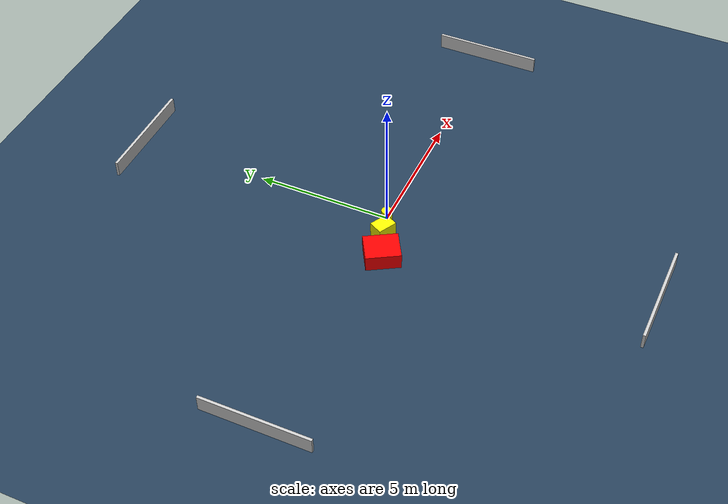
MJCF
<?xml version="1.0" ?>
<mujoco model="generated_environment">
  <option timestep="0.01" integrator="RK4" cone="elliptic"/>
  <default>
    <geom density="1"/>
  </default>
  <asset>
    <texture builtin="gradient" height="3072" name="skybox" rgb1="0.3 0.5 0.7" rgb2="0 0 0" type="skybox" width="512"/>
    <texture builtin="checker" height="300" name="groundplane" rgb1="0.2 0.3 0.4" rgb2="0.1 0.2 0.3" type="2d" width="300"/>
    <material name="groundplane" reflectance="0.2" texrepeat="5 5" texture="groundplane"/>
  </asset>
  <worldbody>
    <light dir="0 0 -1" directional="true" pos="0 0 1.5"/>
    <geom condim="3" friction="0.5 0.005 0.001" material="groundplane" name="floor" pos="0 0 0" size="0 0 0.05" type="plane"/>
    <body name="walls">
      <geom name="wall_1" condim="4" pos="-10.0 0.0 0.3" rgba="0.800000011920929 0.800000011920929 0.800000011920929 1.0" size="0.05 2.0 0.3" type="box"/>
      <geom name="wall_2" condim="4" pos="10.0 0.0 0.3" rgba="0.800000011920929 0.800000011920929 0.800000011920929 1.0" size="0.05 2.0 0.3" type="box"/>
      <geom name="wall_3" condim="4" pos="0.0 -10.0 0.3" rgba="0.800000011920929 0.800000011920929 0.800000011920929 1.0" size="2.0 0.05 0.3" type="box"/>
      <geom name="wall_4" condim="4" pos="0.0 10.0 0.3" rgba="0.800000011920929 0.800000011920929 0.800000011920929 1.0" size="2.0 0.05 0.3" type="box"/>
    </body>
    <body name="robot">
      <joint name="joint_x" type="slide" pos="0 0 0" axis="1 0 0"/>
      <joint name="joint_y" type="slide" pos="0 0 0" axis="0 1 0"/>
      <geom name="robot" type="cylinder" pos="0.0 0.0 0.2" size="0.2 0.2 0.0" mass="5.0" friction="1.0 0.005 0.0001" condim="4" rgba="1.0 1.0 0.0 1.0"/>
    </body>
    <body name="obstacle_1_movable">
      <geom name="obstacle_1_movable" condim="4" pos="-0.8125336974920362 -0.21363499511698159 0.3" euler="0 0 331.95204004531354" friction="0.0 0.005 0.001" rgba="1.0 1.0 0.0 1.0" size="0.359322877636817 0.2699944385124711 0.3" type="box" mass="0.1"/>
      <joint type="free"/>
    </body>
    <body name="obstacle_2_static">
      <geom name="obstacle_2_static" condim="4" pos="-1.8239984813175152 -0.6187590423185415 0.3" euler="0 0 300.44159579443266" friction="0.0 0.005 0.001" rgba="1.0 0.0 0.0 1.0" size="0.6287334759065578 0.5349096232113717 0.3" type="box"/>
    </body>
  </worldbody>
  <actuator>
    <motor name="actuator_x" joint="joint_x" gear="1" ctrlrange="-1 1"/>
    <motor name="actuator_y" joint="joint_y" gear="1" ctrlrange="-1 1"/>
  </actuator>
</mujoco>
